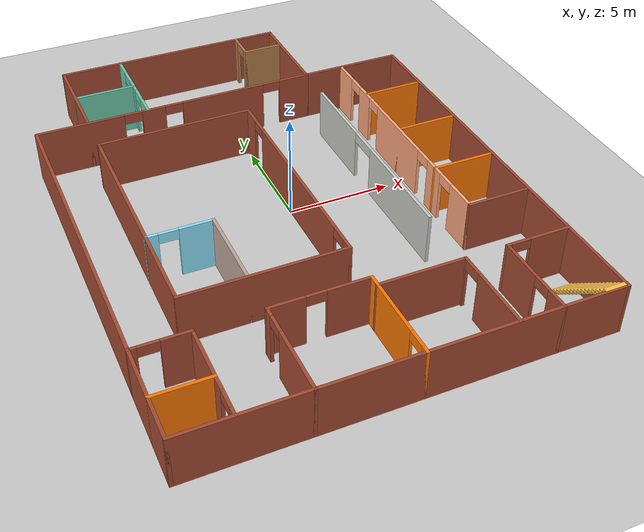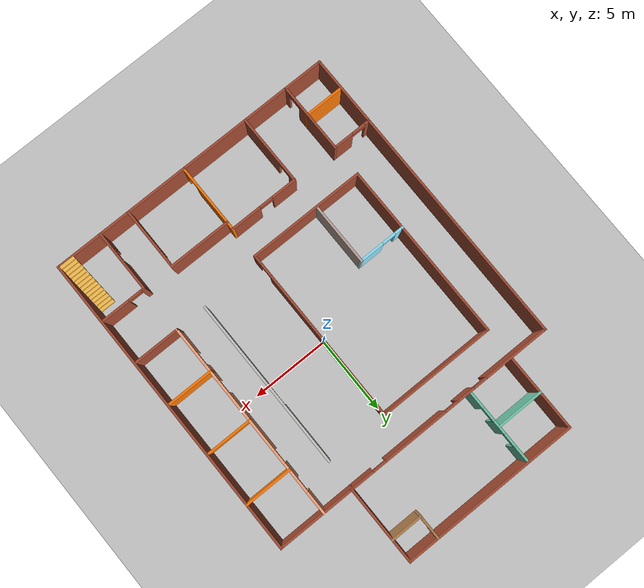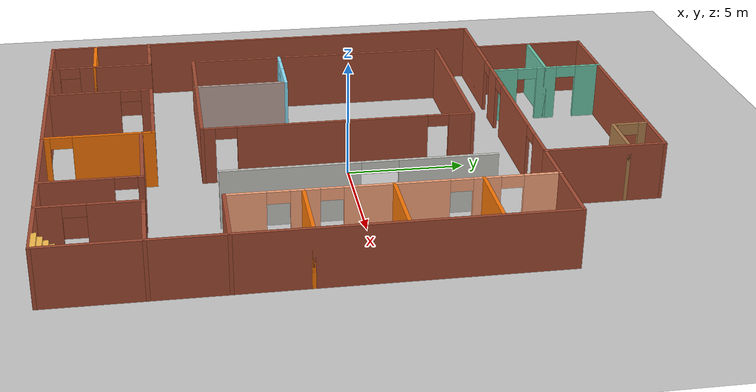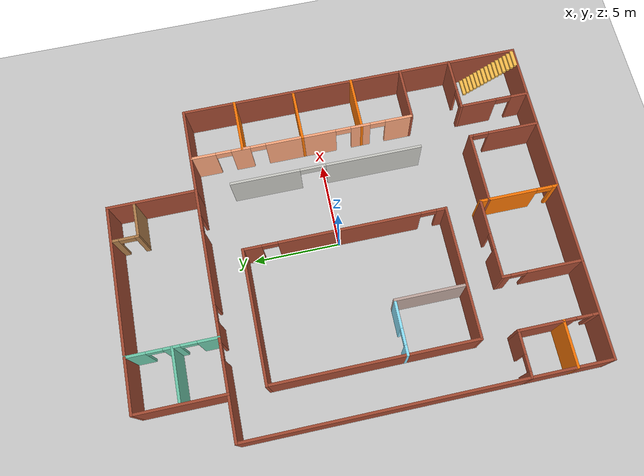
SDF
<sdf version="1.6">
 <world name="default">
  <model name="ground_plane">
   <static>1</static>
   <link name="link">
    <collision name="collision">
     <geometry><plane><normal>0 0 1</normal><size>100 100</size></plane></geometry>
     <surface><friction><ode><mu>100</mu><mu2>50</mu2></ode></friction></surface>
    </collision>
    <visual name="visual">
     <cast_shadows>0</cast_shadows>
     <geometry><plane><normal>0 0 1</normal><size>100 100</size></plane></geometry>
     <material>
      <script><uri>file://media/materials/scripts/gazebo.material</uri><name>Gazebo/Grey</name></script>
     </material>
    </visual>
   </link>
  </model>
  <model name="MyBuilding">
   <pose>-0.452354 -0.124982 0 0 -0 0</pose>
   <link name="Stairs_0">
    <visual name="Stairs_0_Visual_0">
     <pose>8.94729 -9.5729 0.083333 0 -0 0</pose>
     <geometry><box><size>1 0.2 0.166667</size></box></geometry>
     <material>
      <script><uri>file://media/materials/scripts/gazebo.material</uri><name>Gazebo/Grey</name></script>
      <ambient>1 0.764706 0.305882 1</ambient>
     </material>
    </visual>
    <collision name="Stairs_0_Collision_0">
     <geometry><box><size>1 0.2 0.166667</size></box></geometry>
     <pose>8.94729 -9.5729 0.083333 0 -0 0</pose>
    </collision>
    <visual name="Stairs_0_Visual_1">
     <pose>8.94729 -9.7729 0.25 0 -0 0</pose>
     <geometry><box><size>1 0.2 0.166667</size></box></geometry>
     <material>
      <script><uri>file://media/materials/scripts/gazebo.material</uri><name>Gazebo/Grey</name></script>
      <ambient>1 0.764706 0.305882 1</ambient>
     </material>
    </visual>
    <collision name="Stairs_0_Collision_1">
     <geometry><box><size>1 0.2 0.166667</size></box></geometry>
     <pose>8.94729 -9.7729 0.25 0 -0 0</pose>
    </collision>
    <visual name="Stairs_0_Visual_2">
     <pose>8.94729 -9.9729 0.416667 0 -0 0</pose>
     <geometry><box><size>1 0.2 0.166667</size></box></geometry>
     <material>
      <script><uri>file://media/materials/scripts/gazebo.material</uri><name>Gazebo/Grey</name></script>
      <ambient>1 0.764706 0.305882 1</ambient>
     </material>
    </visual>
    <collision name="Stairs_0_Collision_2">
     <geometry><box><size>1 0.2 0.166667</size></box></geometry>
     <pose>8.94729 -9.9729 0.416667 0 -0 0</pose>
    </collision>
    <visual name="Stairs_0_Visual_3">
     <pose>8.94729 -10.1729 0.583333 0 -0 0</pose>
     <geometry><box><size>1 0.2 0.166667</size></box></geometry>
     <material>
      <script><uri>file://media/materials/scripts/gazebo.material</uri><name>Gazebo/Grey</name></script>
      <ambient>1 0.764706 0.305882 1</ambient>
     </material>
    </visual>
    <collision name="Stairs_0_Collision_3">
     <geometry><box><size>1 0.2 0.166667</size></box></geometry>
     <pose>8.94729 -10.1729 0.583333 0 -0 0</pose>
    </collision>
    <visual name="Stairs_0_Visual_4">
     <pose>8.94729 -10.3729 0.75 0 -0 0</pose>
     <geometry><box><size>1 0.2 0.166667</size></box></geometry>
     <material>
      <script><uri>file://media/materials/scripts/gazebo.material</uri><name>Gazebo/Grey</name></script>
      <ambient>1 0.764706 0.305882 1</ambient>
     </material>
    </visual>
    <collision name="Stairs_0_Collision_4">
     <geometry><box><size>1 0.2 0.166667</size></box></geometry>
     <pose>8.94729 -10.3729 0.75 0 -0 0</pose>
    </collision>
    <visual name="Stairs_0_Visual_5">
     <pose>8.94729 -10.5729 0.916667 0 -0 0</pose>
     <geometry><box><size>1 0.2 0.166667</size></box></geometry>
     <material>
      <script><uri>file://media/materials/scripts/gazebo.material</uri><name>Gazebo/Grey</name></script>
      <ambient>1 0.764706 0.305882 1</ambient>
     </material>
    </visual>
    <collision name="Stairs_0_Collision_5">
     <geometry><box><size>1 0.2 0.166667</size></box></geometry>
     <pose>8.94729 -10.5729 0.916667 0 -0 0</pose>
    </collision>
    <visual name="Stairs_0_Visual_6">
     <pose>8.94729 -10.7729 1.08333 0 -0 0</pose>
     <geometry><box><size>1 0.2 0.166667</size></box></geometry>
     <material>
      <script><uri>file://media/materials/scripts/gazebo.material</uri><name>Gazebo/Grey</name></script>
      <ambient>1 0.764706 0.305882 1</ambient>
     </material>
    </visual>
    <collision name="Stairs_0_Collision_6">
     <geometry><box><size>1 0.2 0.166667</size></box></geometry>
     <pose>8.94729 -10.7729 1.08333 0 -0 0</pose>
    </collision>
    <visual name="Stairs_0_Visual_7">
     <pose>8.94729 -10.9729 1.25 0 -0 0</pose>
     <geometry><box><size>1 0.2 0.166667</size></box></geometry>
     <material>
      <script><uri>file://media/materials/scripts/gazebo.material</uri><name>Gazebo/Grey</name></script>
      <ambient>1 0.764706 0.305882 1</ambient>
     </material>
    </visual>
    <collision name="Stairs_0_Collision_7">
     <geometry><box><size>1 0.2 0.166667</size></box></geometry>
     <pose>8.94729 -10.9729 1.25 0 -0 0</pose>
    </collision>
    <visual name="Stairs_0_Visual_8">
     <pose>8.94729 -11.1729 1.41667 0 -0 0</pose>
     <geometry><box><size>1 0.2 0.166667</size></box></geometry>
     <material>
      <script><uri>file://media/materials/scripts/gazebo.material</uri><name>Gazebo/Grey</name></script>
      <ambient>1 0.764706 0.305882 1</ambient>
     </material>
    </visual>
    <collision name="Stairs_0_Collision_8">
     <geometry><box><size>1 0.2 0.166667</size></box></geometry>
     <pose>8.94729 -11.1729 1.41667 0 -0 0</pose>
    </collision>
    <visual name="Stairs_0_Visual_9">
     <pose>8.94729 -11.3729 1.58333 0 -0 0</pose>
     <geometry><box><size>1 0.2 0.166667</size></box></geometry>
     <material>
      <script><uri>file://media/materials/scripts/gazebo.material</uri><name>Gazebo/Grey</name></script>
      <ambient>1 0.764706 0.305882 1</ambient>
     </material>
    </visual>
    <collision name="Stairs_0_Collision_9">
     <geometry><box><size>1 0.2 0.166667</size></box></geometry>
     <pose>8.94729 -11.3729 1.58333 0 -0 0</pose>
    </collision>
    <visual name="Stairs_0_Visual_10">
     <pose>8.94729 -11.5729 1.75 0 -0 0</pose>
     <geometry><box><size>1 0.2 0.166667</size></box></geometry>
     <material>
      <script><uri>file://media/materials/scripts/gazebo.material</uri><name>Gazebo/Grey</name></script>
      <ambient>1 0.764706 0.305882 1</ambient>
     </material>
    </visual>
    <collision name="Stairs_0_Collision_10">
     <geometry><box><size>1 0.2 0.166667</size></box></geometry>
     <pose>8.94729 -11.5729 1.75 0 -0 0</pose>
    </collision>
    <visual name="Stairs_0_Visual_11">
     <pose>8.94729 -11.7729 1.91667 0 -0 0</pose>
     <geometry><box><size>1 0.2 0.166667</size></box></geometry>
     <material>
      <script><uri>file://media/materials/scripts/gazebo.material</uri><name>Gazebo/Grey</name></script>
      <ambient>1 0.764706 0.305882 1</ambient>
     </material>
    </visual>
    <collision name="Stairs_0_Collision_11">
     <geometry><box><size>1 0.2 0.166667</size></box></geometry>
     <pose>8.94729 -11.7729 1.91667 0 -0 0</pose>
    </collision>
    <visual name="Stairs_0_Visual_12">
     <pose>8.94729 -11.9729 2.08333 0 -0 0</pose>
     <geometry><box><size>1 0.2 0.166667</size></box></geometry>
     <material>
      <script><uri>file://media/materials/scripts/gazebo.material</uri><name>Gazebo/Grey</name></script>
      <ambient>1 0.764706 0.305882 1</ambient>
     </material>
    </visual>
    <collision name="Stairs_0_Collision_12">
     <geometry><box><size>1 0.2 0.166667</size></box></geometry>
     <pose>8.94729 -11.9729 2.08333 0 -0 0</pose>
    </collision>
    <visual name="Stairs_0_Visual_13">
     <pose>8.94729 -12.1729 2.25 0 -0 0</pose>
     <geometry><box><size>1 0.2 0.166667</size></box></geometry>
     <material>
      <script><uri>file://media/materials/scripts/gazebo.material</uri><name>Gazebo/Grey</name></script>
      <ambient>1 0.764706 0.305882 1</ambient>
     </material>
    </visual>
    <collision name="Stairs_0_Collision_13">
     <geometry><box><size>1 0.2 0.166667</size></box></geometry>
     <pose>8.94729 -12.1729 2.25 0 -0 0</pose>
    </collision>
    <visual name="Stairs_0_Visual_14">
     <pose>8.94729 -12.3729 2.41667 0 -0 0</pose>
     <geometry><box><size>1 0.2 0.166667</size></box></geometry>
     <material>
      <script><uri>file://media/materials/scripts/gazebo.material</uri><name>Gazebo/Grey</name></script>
      <ambient>1 0.764706 0.305882 1</ambient>
     </material>
    </visual>
    <collision name="Stairs_0_Collision_14">
     <geometry><box><size>1 0.2 0.166667</size></box></geometry>
     <pose>8.94729 -12.3729 2.41667 0 -0 0</pose>
    </collision>
   </link>
   <link name="Wall_11">
    <collision name="Wall_11_Collision">
     <geometry><box><size>7.65008 0.15 2.5</size></box></geometry>
     <pose>0 0 1.25 0 -0 0</pose>
    </collision>
    <visual name="Wall_11_Visual">
     <pose>0 0 1.25 0 -0 0</pose>
     <geometry><box><size>7.65008 0.15 2.5</size></box></geometry>
     <material>
      <script><uri>file://media/materials/scripts/gazebo.material</uri><name>Gazebo/Bricks</name></script>
      <ambient>1 1 1 1</ambient>
     </material>
    </visual>
    <pose>-3.25 5.5 0 0 -0 0</pose>
   </link>
   <link name="Wall_13">
    <pose>0.5 -0.25 0 0 0 -1.5708</pose>
    <visual name="Wall_13_Visual_0">
     <pose>-5.25703 0 1.25 0 -0 0</pose>
     <geometry><box><size>1.13593 0.15 2.5</size></box></geometry>
     <material>
      <script><uri>file://media/materials/scripts/gazebo.material</uri><name>Gazebo/Bricks</name></script>
      <ambient>1 1 1 1</ambient>
     </material>
    </visual>
    <collision name="Wall_13_Collision_0">
     <geometry><box><size>1.13593 0.15 2.5</size></box></geometry>
     <pose>-5.25703 0 1.25 0 -0 0</pose>
    </collision>
    <visual name="Wall_13_Visual_1">
     <pose>0.255466 0 1.25 0 -0 0</pose>
     <geometry><box><size>8.08907 0.15 2.5</size></box></geometry>
     <material>
      <script><uri>file://media/materials/scripts/gazebo.material</uri><name>Gazebo/Bricks</name></script>
      <ambient>1 1 1 1</ambient>
     </material>
    </visual>
    <collision name="Wall_13_Collision_1">
     <geometry><box><size>8.08907 0.15 2.5</size></box></geometry>
     <pose>0.255466 0 1.25 0 -0 0</pose>
    </collision>
    <visual name="Wall_13_Visual_2">
     <pose>5.5125 0 1.25 0 -0 0</pose>
     <geometry><box><size>0.625 0.15 2.5</size></box></geometry>
     <material>
      <script><uri>file://media/materials/scripts/gazebo.material</uri><name>Gazebo/Bricks</name></script>
      <ambient>1 1 1 1</ambient>
     </material>
    </visual>
    <collision name="Wall_13_Collision_2">
     <geometry><box><size>0.625 0.15 2.5</size></box></geometry>
     <pose>5.5125 0 1.25 0 -0 0</pose>
    </collision>
    <visual name="Wall_13_Visual_3">
     <pose>-4.23907 0 2.25 0 -0 0</pose>
     <geometry><box><size>0.9 0.15 0.5</size></box></geometry>
     <material>
      <script><uri>file://media/materials/scripts/gazebo.material</uri><name>Gazebo/Bricks</name></script>
      <ambient>1 1 1 1</ambient>
     </material>
    </visual>
    <collision name="Wall_13_Collision_3">
     <geometry><box><size>0.9 0.15 0.5</size></box></geometry>
     <pose>-4.23907 0 2.25 0 -0 0</pose>
    </collision>
    <visual name="Wall_13_Visual_4">
     <pose>4.75 0 2.25 0 -0 0</pose>
     <geometry><box><size>0.9 0.15 0.5</size></box></geometry>
     <material>
      <script><uri>file://media/materials/scripts/gazebo.material</uri><name>Gazebo/Bricks</name></script>
      <ambient>1 1 1 1</ambient>
     </material>
    </visual>
    <collision name="Wall_13_Collision_4">
     <geometry><box><size>0.9 0.15 0.5</size></box></geometry>
     <pose>4.75 0 2.25 0 -0 0</pose>
    </collision>
   </link>
   <link name="Wall_17">
    <collision name="Wall_17_Collision">
     <geometry><box><size>4.15 0.15 2.5</size></box></geometry>
     <pose>0 0 1.25 0 -0 0</pose>
    </collision>
    <visual name="Wall_17_Visual">
     <pose>0 0 1.25 0 -0 0</pose>
     <geometry><box><size>4.15 0.15 2.5</size></box></geometry>
     <material>
      <script><uri>file://media/materials/scripts/gazebo.material</uri><name>Gazebo/Grey</name></script>
      <ambient>0.760784 0.662745 0.627451 1</ambient>
     </material>
    </visual>
    <pose>-4 -4 0 0 -0 1.5708</pose>
   </link>
   <link name="Wall_2">
    <collision name="Wall_2_Collision">
     <geometry><box><size>20.15 0.15 2.5</size></box></geometry>
     <pose>0 0 1.25 0 -0 0</pose>
    </collision>
    <visual name="Wall_2_Visual">
     <pose>0 0 1.25 0 -0 0</pose>
     <geometry><box><size>20.15 0.15 2.5</size></box></geometry>
     <material>
      <script><uri>file://media/materials/scripts/gazebo.material</uri><name>Gazebo/Bricks</name></script>
      <ambient>1 1 1 1</ambient>
     </material>
    </visual>
    <pose>-9.5 -2.5 0 0 -0 1.5708</pose>
   </link>
   <link name="Wall_20">
    <pose>-5.5 -2 0 0 -0 3.14159</pose>
    <visual name="Wall_20_Visual_0">
     <pose>-0.751088 0 1.25 0 -0 0</pose>
     <geometry><box><size>1.64782 0.15 2.5</size></box></geometry>
     <material>
      <script><uri>file://media/materials/scripts/gazebo.material</uri><name>Gazebo/Grey</name></script>
      <ambient>0.560784 0.905882 1 1</ambient>
     </material>
    </visual>
    <collision name="Wall_20_Collision_0">
     <geometry><box><size>1.64782 0.15 2.5</size></box></geometry>
     <pose>-0.751088 0 1.25 0 -0 0</pose>
    </collision>
    <visual name="Wall_20_Visual_1">
     <pose>1.27391 0 1.25 0 -0 0</pose>
     <geometry><box><size>0.602176 0.15 2.5</size></box></geometry>
     <material>
      <script><uri>file://media/materials/scripts/gazebo.material</uri><name>Gazebo/Grey</name></script>
      <ambient>0.560784 0.905882 1 1</ambient>
     </material>
    </visual>
    <collision name="Wall_20_Collision_1">
     <geometry><box><size>0.602176 0.15 2.5</size></box></geometry>
     <pose>1.27391 0 1.25 0 -0 0</pose>
    </collision>
    <visual name="Wall_20_Visual_2">
     <pose>0.522824 0 2.25 0 -0 0</pose>
     <geometry><box><size>0.9 0.15 0.5</size></box></geometry>
     <material>
      <script><uri>file://media/materials/scripts/gazebo.material</uri><name>Gazebo/Grey</name></script>
      <ambient>0.560784 0.905882 1 1</ambient>
     </material>
    </visual>
    <collision name="Wall_20_Collision_2">
     <geometry><box><size>0.9 0.15 0.5</size></box></geometry>
     <pose>0.522824 0 2.25 0 -0 0</pose>
    </collision>
   </link>
   <link name="Wall_22">
    <pose>-2.5 7.5 0 0 -0 0</pose>
    <visual name="Wall_22_Visual_0">
     <pose>-4.89486 0 1.25 0 -0 0</pose>
     <geometry><box><size>4.36028 0.15 2.5</size></box></geometry>
     <material>
      <script><uri>file://media/materials/scripts/gazebo.material</uri><name>Gazebo/Bricks</name></script>
      <ambient>1 1 1 1</ambient>
     </material>
    </visual>
    <collision name="Wall_22_Collision_0">
     <geometry><box><size>4.36028 0.15 2.5</size></box></geometry>
     <pose>-4.89486 0 1.25 0 -0 0</pose>
    </collision>
    <visual name="Wall_22_Visual_1">
     <pose>-1.22142 0 1.25 0 -0 0</pose>
     <geometry><box><size>1.1866 0.15 2.5</size></box></geometry>
     <material>
      <script><uri>file://media/materials/scripts/gazebo.material</uri><name>Gazebo/Bricks</name></script>
      <ambient>1 1 1 1</ambient>
     </material>
    </visual>
    <collision name="Wall_22_Collision_1">
     <geometry><box><size>1.1866 0.15 2.5</size></box></geometry>
     <pose>-1.22142 0 1.25 0 -0 0</pose>
    </collision>
    <visual name="Wall_22_Visual_2">
     <pose>2.4158 0 1.25 0 -0 0</pose>
     <geometry><box><size>4.28784 0.15 2.5</size></box></geometry>
     <material>
      <script><uri>file://media/materials/scripts/gazebo.material</uri><name>Gazebo/Bricks</name></script>
      <ambient>1 1 1 1</ambient>
     </material>
    </visual>
    <collision name="Wall_22_Collision_2">
     <geometry><box><size>4.28784 0.15 2.5</size></box></geometry>
     <pose>2.4158 0 1.25 0 -0 0</pose>
    </collision>
    <visual name="Wall_22_Visual_3">
     <pose>6.26736 0 1.25 0 -0 0</pose>
     <geometry><box><size>1.61528 0.15 2.5</size></box></geometry>
     <material>
      <script><uri>file://media/materials/scripts/gazebo.material</uri><name>Gazebo/Bricks</name></script>
      <ambient>1 1 1 1</ambient>
     </material>
    </visual>
    <collision name="Wall_22_Collision_3">
     <geometry><box><size>1.61528 0.15 2.5</size></box></geometry>
     <pose>6.26736 0 1.25 0 -0 0</pose>
    </collision>
    <visual name="Wall_22_Visual_4">
     <pose>-2.26472 0 2.25 0 -0 0</pose>
     <geometry><box><size>0.9 0.15 0.5</size></box></geometry>
     <material>
      <script><uri>file://media/materials/scripts/gazebo.material</uri><name>Gazebo/Bricks</name></script>
      <ambient>1 1 1 1</ambient>
     </material>
    </visual>
    <collision name="Wall_22_Collision_4">
     <geometry><box><size>0.9 0.15 0.5</size></box></geometry>
     <pose>-2.26472 0 2.25 0 -0 0</pose>
    </collision>
    <visual name="Wall_22_Visual_5">
     <pose>-0.17812 0 2.25 0 -0 0</pose>
     <geometry><box><size>0.9 0.15 0.5</size></box></geometry>
     <material>
      <script><uri>file://media/materials/scripts/gazebo.material</uri><name>Gazebo/Bricks</name></script>
      <ambient>1 1 1 1</ambient>
     </material>
    </visual>
    <collision name="Wall_22_Collision_5">
     <geometry><box><size>0.9 0.15 0.5</size></box></geometry>
     <pose>-0.17812 0 2.25 0 -0 0</pose>
    </collision>
    <visual name="Wall_22_Visual_6">
     <pose>5.00972 0 2.25 0 -0 0</pose>
     <geometry><box><size>0.9 0.15 0.5</size></box></geometry>
     <material>
      <script><uri>file://media/materials/scripts/gazebo.material</uri><name>Gazebo/Bricks</name></script>
      <ambient>1 1 1 1</ambient>
     </material>
    </visual>
    <collision name="Wall_22_Collision_6">
     <geometry><box><size>0.9 0.15 0.5</size></box></geometry>
     <pose>5.00972 0 2.25 0 -0 0</pose>
    </collision>
   </link>
   <link name="Wall_23">
    <collision name="Wall_23_Collision">
     <geometry><box><size>5.15 0.15 2.5</size></box></geometry>
     <pose>0 0 1.25 0 -0 0</pose>
    </collision>
    <visual name="Wall_23_Visual">
     <pose>0 0 1.25 0 -0 0</pose>
     <geometry><box><size>5.15 0.15 2.5</size></box></geometry>
     <material>
      <script><uri>file://media/materials/scripts/gazebo.material</uri><name>Gazebo/Bricks</name></script>
      <ambient>1 1 1 1</ambient>
     </material>
    </visual>
    <pose>4.5 10 0 0 -0 1.5708</pose>
   </link>
   <link name="Wall_24">
    <collision name="Wall_24_Collision">
     <geometry><box><size>11.65 0.15 2.5</size></box></geometry>
     <pose>0 0 1.25 0 -0 0</pose>
    </collision>
    <visual name="Wall_24_Visual">
     <pose>0 0 1.25 0 -0 0</pose>
     <geometry><box><size>11.65 0.15 2.5</size></box></geometry>
     <material>
      <script><uri>file://media/materials/scripts/gazebo.material</uri><name>Gazebo/Bricks</name></script>
      <ambient>1 1 1 1</ambient>
     </material>
    </visual>
    <pose>-1.25 12.5 0 0 -0 3.14159</pose>
   </link>
   <link name="Wall_25">
    <collision name="Wall_25_Collision">
     <geometry><box><size>5.15 0.15 2.5</size></box></geometry>
     <pose>0 0 1.25 0 -0 0</pose>
    </collision>
    <visual name="Wall_25_Visual">
     <pose>0 0 1.25 0 -0 0</pose>
     <geometry><box><size>5.15 0.15 2.5</size></box></geometry>
     <material>
      <script><uri>file://media/materials/scripts/gazebo.material</uri><name>Gazebo/Bricks</name></script>
      <ambient>1 1 1 1</ambient>
     </material>
    </visual>
    <pose>-7 10 0 0 0 -1.5708</pose>
   </link>
   <link name="Wall_27">
    <pose>4.5 0 0 0 -0 1.5708</pose>
    <visual name="Wall_27_Visual_0">
     <pose>-2.77301 0 1.25 0 -0 0</pose>
     <geometry><box><size>5.60398 0.15 2.5</size></box></geometry>
     <material>
      <script><uri>file://media/materials/scripts/gazebo.material</uri><name>Gazebo/CeilingTiled</name></script>
      <ambient>0.560784 0.905882 1 1</ambient>
     </material>
    </visual>
    <collision name="Wall_27_Collision_0">
     <geometry><box><size>5.60398 0.15 2.5</size></box></geometry>
     <pose>-2.77301 0 1.25 0 -0 0</pose>
    </collision>
    <visual name="Wall_27_Visual_1">
     <pose>3.55199 0 1.25 0 -0 0</pose>
     <geometry><box><size>4.04602 0.15 2.5</size></box></geometry>
     <material>
      <script><uri>file://media/materials/scripts/gazebo.material</uri><name>Gazebo/CeilingTiled</name></script>
      <ambient>0.560784 0.905882 1 1</ambient>
     </material>
    </visual>
    <collision name="Wall_27_Collision_1">
     <geometry><box><size>4.04602 0.15 2.5</size></box></geometry>
     <pose>3.55199 0 1.25 0 -0 0</pose>
    </collision>
    <visual name="Wall_27_Visual_2">
     <pose>0.778981 0 2.25 0 -0 0</pose>
     <geometry><box><size>1.5 0.15 0.5</size></box></geometry>
     <material>
      <script><uri>file://media/materials/scripts/gazebo.material</uri><name>Gazebo/CeilingTiled</name></script>
      <ambient>0.560784 0.905882 1 1</ambient>
     </material>
    </visual>
    <collision name="Wall_27_Collision_2">
     <geometry><box><size>1.5 0.15 0.5</size></box></geometry>
     <pose>0.778981 0 2.25 0 -0 0</pose>
    </collision>
   </link>
   <link name="Wall_30">
    <pose>0.5 -10.25 0 0 0 -1.5708</pose>
    <visual name="Wall_30_Visual_0">
     <pose>-0.641869 0 1.25 0 -0 0</pose>
     <geometry><box><size>3.36626 0.15 2.5</size></box></geometry>
     <material>
      <script><uri>file://media/materials/scripts/gazebo.material</uri><name>Gazebo/Grey</name></script>
      <ambient>0.996078 0.47451 0.0196078 1</ambient>
     </material>
    </visual>
    <collision name="Wall_30_Collision_0">
     <geometry><box><size>3.36626 0.15 2.5</size></box></geometry>
     <pose>-0.641869 0 1.25 0 -0 0</pose>
    </collision>
    <visual name="Wall_30_Visual_1">
     <pose>2.13313 0 1.25 0 -0 0</pose>
     <geometry><box><size>0.383739 0.15 2.5</size></box></geometry>
     <material>
      <script><uri>file://media/materials/scripts/gazebo.material</uri><name>Gazebo/Grey</name></script>
      <ambient>0.996078 0.47451 0.0196078 1</ambient>
     </material>
    </visual>
    <collision name="Wall_30_Collision_1">
     <geometry><box><size>0.383739 0.15 2.5</size></box></geometry>
     <pose>2.13313 0 1.25 0 -0 0</pose>
    </collision>
    <visual name="Wall_30_Visual_2">
     <pose>1.49126 0 2.25 0 -0 0</pose>
     <geometry><box><size>0.9 0.15 0.5</size></box></geometry>
     <material>
      <script><uri>file://media/materials/scripts/gazebo.material</uri><name>Gazebo/Grey</name></script>
      <ambient>0.996078 0.47451 0.0196078 1</ambient>
     </material>
    </visual>
    <collision name="Wall_30_Collision_2">
     <geometry><box><size>0.9 0.15 0.5</size></box></geometry>
     <pose>1.49126 0 2.25 0 -0 0</pose>
    </collision>
   </link>
   <link name="Wall_32">
    <pose>6.5 1 0 0 -0 1.5708</pose>
    <visual name="Wall_32_Visual_0">
     <pose>-5.73988 0 1.25 0 -0 0</pose>
     <geometry><box><size>1.67024 0.15 2.5</size></box></geometry>
     <material>
      <script><uri>file://media/materials/scripts/gazebo.material</uri><name>Gazebo/Grey</name></script>
      <ambient>1 0.666667 0.498039 1</ambient>
     </material>
    </visual>
    <collision name="Wall_32_Collision_0">
     <geometry><box><size>1.67024 0.15 2.5</size></box></geometry>
     <pose>-5.73988 0 1.25 0 -0 0</pose>
    </collision>
    <visual name="Wall_32_Visual_1">
     <pose>-3.43123 0 1.25 0 -0 0</pose>
     <geometry><box><size>1.14705 0.15 2.5</size></box></geometry>
     <material>
      <script><uri>file://media/materials/scripts/gazebo.material</uri><name>Gazebo/Grey</name></script>
      <ambient>1 0.666667 0.498039 1</ambient>
     </material>
    </visual>
    <collision name="Wall_32_Collision_1">
     <geometry><box><size>1.14705 0.15 2.5</size></box></geometry>
     <pose>-3.43123 0 1.25 0 -0 0</pose>
    </collision>
    <visual name="Wall_32_Visual_2">
     <pose>0.104585 0 1.25 0 -0 0</pose>
     <geometry><box><size>4.12458 0.15 2.5</size></box></geometry>
     <material>
      <script><uri>file://media/materials/scripts/gazebo.material</uri><name>Gazebo/Grey</name></script>
      <ambient>1 0.666667 0.498039 1</ambient>
     </material>
    </visual>
    <collision name="Wall_32_Collision_2">
     <geometry><box><size>4.12458 0.15 2.5</size></box></geometry>
     <pose>0.104585 0 1.25 0 -0 0</pose>
    </collision>
    <visual name="Wall_32_Visual_3">
     <pose>3.61714 0 1.25 0 -0 0</pose>
     <geometry><box><size>1.10053 0.15 2.5</size></box></geometry>
     <material>
      <script><uri>file://media/materials/scripts/gazebo.material</uri><name>Gazebo/Grey</name></script>
      <ambient>1 0.666667 0.498039 1</ambient>
     </material>
    </visual>
    <collision name="Wall_32_Collision_3">
     <geometry><box><size>1.10053 0.15 2.5</size></box></geometry>
     <pose>3.61714 0 1.25 0 -0 0</pose>
    </collision>
    <visual name="Wall_32_Visual_4">
     <pose>5.8212 0 1.25 0 -0 0</pose>
     <geometry><box><size>1.5076 0.15 2.5</size></box></geometry>
     <material>
      <script><uri>file://media/materials/scripts/gazebo.material</uri><name>Gazebo/Grey</name></script>
      <ambient>1 0.666667 0.498039 1</ambient>
     </material>
    </visual>
    <collision name="Wall_32_Collision_4">
     <geometry><box><size>1.5076 0.15 2.5</size></box></geometry>
     <pose>5.8212 0 1.25 0 -0 0</pose>
    </collision>
    <visual name="Wall_32_Visual_5">
     <pose>-4.45476 0 2.25 0 -0 0</pose>
     <geometry><box><size>0.9 0.15 0.5</size></box></geometry>
     <material>
      <script><uri>file://media/materials/scripts/gazebo.material</uri><name>Gazebo/Grey</name></script>
      <ambient>1 0.666667 0.498039 1</ambient>
     </material>
    </visual>
    <collision name="Wall_32_Collision_5">
     <geometry><box><size>0.9 0.15 0.5</size></box></geometry>
     <pose>-4.45476 0 2.25 0 -0 0</pose>
    </collision>
    <visual name="Wall_32_Visual_6">
     <pose>-2.40771 0 2.25 0 -0 0</pose>
     <geometry><box><size>0.9 0.15 0.5</size></box></geometry>
     <material>
      <script><uri>file://media/materials/scripts/gazebo.material</uri><name>Gazebo/Grey</name></script>
      <ambient>1 0.666667 0.498039 1</ambient>
     </material>
    </visual>
    <collision name="Wall_32_Collision_6">
     <geometry><box><size>0.9 0.15 0.5</size></box></geometry>
     <pose>-2.40771 0 2.25 0 -0 0</pose>
    </collision>
    <visual name="Wall_32_Visual_7">
     <pose>2.61688 0 2.25 0 -0 0</pose>
     <geometry><box><size>0.9 0.15 0.5</size></box></geometry>
     <material>
      <script><uri>file://media/materials/scripts/gazebo.material</uri><name>Gazebo/Grey</name></script>
      <ambient>1 0.666667 0.498039 1</ambient>
     </material>
    </visual>
    <collision name="Wall_32_Collision_7">
     <geometry><box><size>0.9 0.15 0.5</size></box></geometry>
     <pose>2.61688 0 2.25 0 -0 0</pose>
    </collision>
    <visual name="Wall_32_Visual_8">
     <pose>4.6174 0 2.25 0 -0 0</pose>
     <geometry><box><size>0.9 0.15 0.5</size></box></geometry>
     <material>
      <script><uri>file://media/materials/scripts/gazebo.material</uri><name>Gazebo/Grey</name></script>
      <ambient>1 0.666667 0.498039 1</ambient>
     </material>
    </visual>
    <collision name="Wall_32_Collision_8">
     <geometry><box><size>0.9 0.15 0.5</size></box></geometry>
     <pose>4.6174 0 2.25 0 -0 0</pose>
    </collision>
   </link>
   <link name="Wall_34">
    <collision name="Wall_34_Collision">
     <geometry><box><size>20.15 0.15 2.5</size></box></geometry>
     <pose>0 0 1.25 0 -0 0</pose>
    </collision>
    <visual name="Wall_34_Visual">
     <pose>0 0 1.25 0 -0 0</pose>
     <geometry><box><size>20.15 0.15 2.5</size></box></geometry>
     <material>
      <script><uri>file://media/materials/scripts/gazebo.material</uri><name>Gazebo/Bricks</name></script>
      <ambient>1 1 1 1</ambient>
     </material>
    </visual>
    <pose>9.5 -2.5 0 0 0 -1.5708</pose>
   </link>
   <link name="Wall_36">
    <collision name="Wall_36_Collision">
     <geometry><box><size>5.15 0.15 2.5</size></box></geometry>
     <pose>0 0 1.25 0 -0 0</pose>
    </collision>
    <visual name="Wall_36_Visual">
     <pose>0 0 1.25 0 -0 0</pose>
     <geometry><box><size>5.15 0.15 2.5</size></box></geometry>
     <material>
      <script><uri>file://media/materials/scripts/gazebo.material</uri><name>Gazebo/Bricks</name></script>
      <ambient>1 1 1 1</ambient>
     </material>
    </visual>
    <pose>7 7.5 0 0 -0 0</pose>
   </link>
   <link name="Wall_38">
    <collision name="Wall_38_Collision">
     <geometry><box><size>3.15 0.15 2.5</size></box></geometry>
     <pose>0 0 1.25 0 -0 0</pose>
    </collision>
    <visual name="Wall_38_Visual">
     <pose>0 0 1.25 0 -0 0</pose>
     <geometry><box><size>3.15 0.15 2.5</size></box></geometry>
     <material>
      <script><uri>file://media/materials/scripts/gazebo.material</uri><name>Gazebo/Bricks</name></script>
      <ambient>1 1 1 1</ambient>
     </material>
    </visual>
    <pose>8 -5.5 0 0 -0 0</pose>
   </link>
   <link name="Wall_4">
    <collision name="Wall_4_Collision">
     <geometry><box><size>19.15 0.15 2.5</size></box></geometry>
     <pose>0 0 1.25 0 -0 0</pose>
    </collision>
    <visual name="Wall_4_Visual">
     <pose>0 0 1.25 0 -0 0</pose>
     <geometry><box><size>19.15 0.15 2.5</size></box></geometry>
     <material>
      <script><uri>file://media/materials/scripts/gazebo.material</uri><name>Gazebo/Bricks</name></script>
      <ambient>1 1 1 1</ambient>
     </material>
    </visual>
    <pose>0 -12.5 0 0 -0 0</pose>
   </link>
   <link name="Wall_40">
    <pose>8 -8.5 0 0 -0 3.14159</pose>
    <visual name="Wall_40_Visual_0">
     <pose>-0.584222 0 1.25 0 -0 0</pose>
     <geometry><box><size>1.98156 0.15 2.5</size></box></geometry>
     <material>
      <script><uri>file://media/materials/scripts/gazebo.material</uri><name>Gazebo/Bricks</name></script>
      <ambient>1 1 1 1</ambient>
     </material>
    </visual>
    <collision name="Wall_40_Collision_0">
     <geometry><box><size>1.98156 0.15 2.5</size></box></geometry>
     <pose>-0.584222 0 1.25 0 -0 0</pose>
    </collision>
    <visual name="Wall_40_Visual_1">
     <pose>1.44078 0 1.25 0 -0 0</pose>
     <geometry><box><size>0.268443 0.15 2.5</size></box></geometry>
     <material>
      <script><uri>file://media/materials/scripts/gazebo.material</uri><name>Gazebo/Bricks</name></script>
      <ambient>1 1 1 1</ambient>
     </material>
    </visual>
    <collision name="Wall_40_Collision_1">
     <geometry><box><size>0.268443 0.15 2.5</size></box></geometry>
     <pose>1.44078 0 1.25 0 -0 0</pose>
    </collision>
    <visual name="Wall_40_Visual_2">
     <pose>0.856557 0 2.25 0 -0 0</pose>
     <geometry><box><size>0.9 0.15 0.5</size></box></geometry>
     <material>
      <script><uri>file://media/materials/scripts/gazebo.material</uri><name>Gazebo/Bricks</name></script>
      <ambient>1 1 1 1</ambient>
     </material>
    </visual>
    <collision name="Wall_40_Collision_2">
     <geometry><box><size>0.9 0.15 0.5</size></box></geometry>
     <pose>0.856557 0 2.25 0 -0 0</pose>
    </collision>
   </link>
   <link name="Wall_41">
    <pose>6.5 -10.5 0 0 0 -1.5708</pose>
    <visual name="Wall_41_Visual_0">
     <pose>-0.993422 0 1.25 0 -0 0</pose>
     <geometry><box><size>2.16316 0.15 2.5</size></box></geometry>
     <material>
      <script><uri>file://media/materials/scripts/gazebo.material</uri><name>Gazebo/Bricks</name></script>
      <ambient>1 1 1 1</ambient>
     </material>
    </visual>
    <collision name="Wall_41_Collision_0">
     <geometry><box><size>2.16316 0.15 2.5</size></box></geometry>
     <pose>-0.993422 0 1.25 0 -0 0</pose>
    </collision>
    <visual name="Wall_41_Visual_1">
     <pose>1.53158 0 1.25 0 -0 0</pose>
     <geometry><box><size>1.08684 0.15 2.5</size></box></geometry>
     <material>
      <script><uri>file://media/materials/scripts/gazebo.material</uri><name>Gazebo/Bricks</name></script>
      <ambient>1 1 1 1</ambient>
     </material>
    </visual>
    <collision name="Wall_41_Collision_1">
     <geometry><box><size>1.08684 0.15 2.5</size></box></geometry>
     <pose>1.53158 0 1.25 0 -0 0</pose>
    </collision>
    <visual name="Wall_41_Visual_2">
     <pose>0.538157 0 2.25 0 -0 0</pose>
     <geometry><box><size>0.9 0.15 0.5</size></box></geometry>
     <material>
      <script><uri>file://media/materials/scripts/gazebo.material</uri><name>Gazebo/Bricks</name></script>
      <ambient>1 1 1 1</ambient>
     </material>
    </visual>
    <collision name="Wall_41_Collision_2">
     <geometry><box><size>0.9 0.15 0.5</size></box></geometry>
     <pose>0.538157 0 2.25 0 -0 0</pose>
    </collision>
   </link>
   <link name="Wall_43">
    <collision name="Wall_43_Collision">
     <geometry><box><size>4.15 0.15 2.5</size></box></geometry>
     <pose>0 0 1.25 0 -0 0</pose>
    </collision>
    <visual name="Wall_43_Visual">
     <pose>0 0 1.25 0 -0 0</pose>
     <geometry><box><size>4.15 0.15 2.5</size></box></geometry>
     <material>
      <script><uri>file://media/materials/scripts/gazebo.material</uri><name>Gazebo/Bricks</name></script>
      <ambient>1 1 1 1</ambient>
     </material>
    </visual>
    <pose>2.5 -8.5 0 0 -0 0</pose>
   </link>
   <link name="Wall_44">
    <pose>4.5 -10.5 0 0 0 -1.5708</pose>
    <visual name="Wall_44_Visual_0">
     <pose>-1.9526 0 1.25 0 -0 0</pose>
     <geometry><box><size>0.244488 0.15 2.5</size></box></geometry>
     <material>
      <script><uri>file://media/materials/scripts/gazebo.material</uri><name>Gazebo/Bricks</name></script>
      <ambient>1 1 1 1</ambient>
     </material>
    </visual>
    <collision name="Wall_44_Collision_0">
     <geometry><box><size>0.244488 0.15 2.5</size></box></geometry>
     <pose>-1.9526 0 1.25 0 -0 0</pose>
    </collision>
    <visual name="Wall_44_Visual_1">
     <pose>0.572244 0 1.25 0 -0 0</pose>
     <geometry><box><size>3.00521 0.15 2.5</size></box></geometry>
     <material>
      <script><uri>file://media/materials/scripts/gazebo.material</uri><name>Gazebo/Bricks</name></script>
      <ambient>1 1 1 1</ambient>
     </material>
    </visual>
    <collision name="Wall_44_Collision_1">
     <geometry><box><size>3.00521 0.15 2.5</size></box></geometry>
     <pose>0.572244 0 1.25 0 -0 0</pose>
    </collision>
    <visual name="Wall_44_Visual_2">
     <pose>-1.38036 0 2.25 0 -0 0</pose>
     <geometry><box><size>0.9 0.15 0.5</size></box></geometry>
     <material>
      <script><uri>file://media/materials/scripts/gazebo.material</uri><name>Gazebo/Bricks</name></script>
      <ambient>1 1 1 1</ambient>
     </material>
    </visual>
    <collision name="Wall_44_Collision_2">
     <geometry><box><size>0.9 0.15 0.5</size></box></geometry>
     <pose>-1.38036 0 2.25 0 -0 0</pose>
    </collision>
   </link>
   <link name="Wall_46">
    <collision name="Wall_46_Collision">
     <geometry><box><size>3.15 0.15 2.5</size></box></geometry>
     <pose>0 0 1.25 0 -0 0</pose>
    </collision>
    <visual name="Wall_46_Visual">
     <pose>0 0 1.25 0 -0 0</pose>
     <geometry><box><size>3.15 0.15 2.5</size></box></geometry>
     <material>
      <script><uri>file://media/materials/scripts/gazebo.material</uri><name>Gazebo/Grey</name></script>
      <ambient>0.996078 0.47451 0.0196078 1</ambient>
     </material>
    </visual>
    <pose>8 -2.5 0 0 -0 0</pose>
   </link>
   <link name="Wall_48">
    <collision name="Wall_48_Collision">
     <geometry><box><size>3.15 0.15 2.5</size></box></geometry>
     <pose>0 0 1.25 0 -0 0</pose>
    </collision>
    <visual name="Wall_48_Visual">
     <pose>0 0 1.25 0 -0 0</pose>
     <geometry><box><size>3.15 0.15 2.5</size></box></geometry>
     <material>
      <script><uri>file://media/materials/scripts/gazebo.material</uri><name>Gazebo/Grey</name></script>
      <ambient>0.996078 0.47451 0.0196078 1</ambient>
     </material>
    </visual>
    <pose>8 1 0 0 -0 0</pose>
   </link>
   <link name="Wall_50">
    <collision name="Wall_50_Collision">
     <geometry><box><size>3.15 0.15 2.5</size></box></geometry>
     <pose>0 0 1.25 0 -0 0</pose>
    </collision>
    <visual name="Wall_50_Visual">
     <pose>0 0 1.25 0 -0 0</pose>
     <geometry><box><size>3.15 0.15 2.5</size></box></geometry>
     <material>
      <script><uri>file://media/materials/scripts/gazebo.material</uri><name>Gazebo/Grey</name></script>
      <ambient>0.996078 0.47451 0.0196078 1</ambient>
     </material>
    </visual>
    <pose>8 4.5 0 0 -0 0</pose>
   </link>
   <link name="Wall_52">
    <pose>-8.25 -8 0 0 -0 0</pose>
    <visual name="Wall_52_Visual_0">
     <pose>-1.12311 0 1.25 0 -0 0</pose>
     <geometry><box><size>0.403789 0.15 2.5</size></box></geometry>
     <material>
      <script><uri>file://media/materials/scripts/gazebo.material</uri><name>Gazebo/Bricks</name></script>
      <ambient>1 1 1 1</ambient>
     </material>
    </visual>
    <collision name="Wall_52_Collision_0">
     <geometry><box><size>0.403789 0.15 2.5</size></box></geometry>
     <pose>-1.12311 0 1.25 0 -0 0</pose>
    </collision>
    <visual name="Wall_52_Visual_1">
     <pose>0.651894 0 1.25 0 -0 0</pose>
     <geometry><box><size>1.34621 0.15 2.5</size></box></geometry>
     <material>
      <script><uri>file://media/materials/scripts/gazebo.material</uri><name>Gazebo/Bricks</name></script>
      <ambient>1 1 1 1</ambient>
     </material>
    </visual>
    <collision name="Wall_52_Collision_1">
     <geometry><box><size>1.34621 0.15 2.5</size></box></geometry>
     <pose>0.651894 0 1.25 0 -0 0</pose>
    </collision>
    <visual name="Wall_52_Visual_2">
     <pose>-0.471211 0 2.25 0 -0 0</pose>
     <geometry><box><size>0.9 0.15 0.5</size></box></geometry>
     <material>
      <script><uri>file://media/materials/scripts/gazebo.material</uri><name>Gazebo/Bricks</name></script>
      <ambient>1 1 1 1</ambient>
     </material>
    </visual>
    <collision name="Wall_52_Collision_2">
     <geometry><box><size>0.9 0.15 0.5</size></box></geometry>
     <pose>-0.471211 0 2.25 0 -0 0</pose>
    </collision>
   </link>
   <link name="Wall_53">
    <pose>-7 -10.25 0 0 0 -1.5708</pose>
    <visual name="Wall_53_Visual_0">
     <pose>-0.691016 0 1.25 0 -0 0</pose>
     <geometry><box><size>3.26797 0.15 2.5</size></box></geometry>
     <material>
      <script><uri>file://media/materials/scripts/gazebo.material</uri><name>Gazebo/Bricks</name></script>
      <ambient>1 1 1 1</ambient>
     </material>
    </visual>
    <collision name="Wall_53_Collision_0">
     <geometry><box><size>3.26797 0.15 2.5</size></box></geometry>
     <pose>-0.691016 0 1.25 0 -0 0</pose>
    </collision>
    <visual name="Wall_53_Visual_1">
     <pose>2.08398 0 1.25 0 -0 0</pose>
     <geometry><box><size>0.482033 0.15 2.5</size></box></geometry>
     <material>
      <script><uri>file://media/materials/scripts/gazebo.material</uri><name>Gazebo/Bricks</name></script>
      <ambient>1 1 1 1</ambient>
     </material>
    </visual>
    <collision name="Wall_53_Collision_1">
     <geometry><box><size>0.482033 0.15 2.5</size></box></geometry>
     <pose>2.08398 0 1.25 0 -0 0</pose>
    </collision>
    <visual name="Wall_53_Visual_2">
     <pose>1.39297 0 2.25 0 -0 0</pose>
     <geometry><box><size>0.9 0.15 0.5</size></box></geometry>
     <material>
      <script><uri>file://media/materials/scripts/gazebo.material</uri><name>Gazebo/Bricks</name></script>
      <ambient>1 1 1 1</ambient>
     </material>
    </visual>
    <collision name="Wall_53_Collision_2">
     <geometry><box><size>0.9 0.15 0.5</size></box></geometry>
     <pose>1.39297 0 2.25 0 -0 0</pose>
    </collision>
   </link>
   <link name="Wall_55">
    <pose>-1.75 -8 0 0 -0 3.14159</pose>
    <visual name="Wall_55_Visual_0">
     <pose>-1.29796 0 1.25 0 -0 0</pose>
     <geometry><box><size>2.05409 0.15 2.5</size></box></geometry>
     <material>
      <script><uri>file://media/materials/scripts/gazebo.material</uri><name>Gazebo/Bricks</name></script>
      <ambient>1 1 1 1</ambient>
     </material>
    </visual>
    <collision name="Wall_55_Collision_0">
     <geometry><box><size>2.05409 0.15 2.5</size></box></geometry>
     <pose>-1.29796 0 1.25 0 -0 0</pose>
    </collision>
    <visual name="Wall_55_Visual_1">
     <pose>1.47704 0 1.25 0 -0 0</pose>
     <geometry><box><size>1.69592 0.15 2.5</size></box></geometry>
     <material>
      <script><uri>file://media/materials/scripts/gazebo.material</uri><name>Gazebo/Bricks</name></script>
      <ambient>1 1 1 1</ambient>
     </material>
    </visual>
    <collision name="Wall_55_Collision_1">
     <geometry><box><size>1.69592 0.15 2.5</size></box></geometry>
     <pose>1.47704 0 1.25 0 -0 0</pose>
    </collision>
    <visual name="Wall_55_Visual_2">
     <pose>0.179085 0 2.25 0 -0 0</pose>
     <geometry><box><size>0.9 0.15 0.5</size></box></geometry>
     <material>
      <script><uri>file://media/materials/scripts/gazebo.material</uri><name>Gazebo/Bricks</name></script>
      <ambient>1 1 1 1</ambient>
     </material>
    </visual>
    <collision name="Wall_55_Collision_2">
     <geometry><box><size>0.9 0.15 0.5</size></box></geometry>
     <pose>0.179085 0 2.25 0 -0 0</pose>
    </collision>
   </link>
   <link name="Wall_56">
    <pose>-4 -10.25 0 0 0 -1.5708</pose>
    <visual name="Wall_56_Visual_0">
     <pose>-2.05968 0 1.25 0 -0 0</pose>
     <geometry><box><size>0.530629 0.15 2.5</size></box></geometry>
     <material>
      <script><uri>file://media/materials/scripts/gazebo.material</uri><name>Gazebo/Bricks</name></script>
      <ambient>1 1 1 1</ambient>
     </material>
    </visual>
    <collision name="Wall_56_Collision_0">
     <geometry><box><size>0.530629 0.15 2.5</size></box></geometry>
     <pose>-2.05968 0 1.25 0 -0 0</pose>
    </collision>
    <visual name="Wall_56_Visual_1">
     <pose>0.715315 0 1.25 0 -0 0</pose>
     <geometry><box><size>3.21937 0.15 2.5</size></box></geometry>
     <material>
      <script><uri>file://media/materials/scripts/gazebo.material</uri><name>Gazebo/Bricks</name></script>
      <ambient>1 1 1 1</ambient>
     </material>
    </visual>
    <collision name="Wall_56_Collision_1">
     <geometry><box><size>3.21937 0.15 2.5</size></box></geometry>
     <pose>0.715315 0 1.25 0 -0 0</pose>
    </collision>
    <visual name="Wall_56_Visual_2">
     <pose>-1.34437 0 2.25 0 -0 0</pose>
     <geometry><box><size>0.9 0.15 0.5</size></box></geometry>
     <material>
      <script><uri>file://media/materials/scripts/gazebo.material</uri><name>Gazebo/Bricks</name></script>
      <ambient>1 1 1 1</ambient>
     </material>
    </visual>
    <collision name="Wall_56_Collision_2">
     <geometry><box><size>0.9 0.15 0.5</size></box></geometry>
     <pose>-1.34437 0 2.25 0 -0 0</pose>
    </collision>
   </link>
   <link name="Wall_58">
    <collision name="Wall_58_Collision">
     <geometry><box><size>2.65 0.15 2.5</size></box></geometry>
     <pose>0 0 1.25 0 -0 0</pose>
    </collision>
    <visual name="Wall_58_Visual">
     <pose>0 0 1.25 0 -0 0</pose>
     <geometry><box><size>2.65 0.15 2.5</size></box></geometry>
     <material>
      <script><uri>file://media/materials/scripts/gazebo.material</uri><name>Gazebo/Grey</name></script>
      <ambient>0.996078 0.47451 0.0196078 1</ambient>
     </material>
    </visual>
    <pose>-8.25 -10.5 0 0 -0 0</pose>
   </link>
   <link name="Wall_60">
    <pose>-4 10 0 0 -0 1.5708</pose>
    <visual name="Wall_60_Visual_0">
     <pose>-1.95014 0 1.25 0 -0 0</pose>
     <geometry><box><size>1.24971 0.15 2.5</size></box></geometry>
     <material>
      <script><uri>file://media/materials/scripts/gazebo.material</uri><name>Gazebo/Grey</name></script>
      <ambient>0.435294 0.796078 0.67451 1</ambient>
     </material>
    </visual>
    <collision name="Wall_60_Collision_0">
     <geometry><box><size>1.24971 0.15 2.5</size></box></geometry>
     <pose>-1.95014 0 1.25 0 -0 0</pose>
    </collision>
    <visual name="Wall_60_Visual_1">
     <pose>0.034256 0 1.25 0 -0 0</pose>
     <geometry><box><size>0.919085 0.15 2.5</size></box></geometry>
     <material>
      <script><uri>file://media/materials/scripts/gazebo.material</uri><name>Gazebo/Grey</name></script>
      <ambient>0.435294 0.796078 0.67451 1</ambient>
     </material>
    </visual>
    <collision name="Wall_60_Collision_1">
     <geometry><box><size>0.919085 0.15 2.5</size></box></geometry>
     <pose>0.034256 0 1.25 0 -0 0</pose>
    </collision>
    <visual name="Wall_60_Visual_2">
     <pose>1.9844 0 1.25 0 -0 0</pose>
     <geometry><box><size>1.1812 0.15 2.5</size></box></geometry>
     <material>
      <script><uri>file://media/materials/scripts/gazebo.material</uri><name>Gazebo/Grey</name></script>
      <ambient>0.435294 0.796078 0.67451 1</ambient>
     </material>
    </visual>
    <collision name="Wall_60_Collision_2">
     <geometry><box><size>1.1812 0.15 2.5</size></box></geometry>
     <pose>1.9844 0 1.25 0 -0 0</pose>
    </collision>
    <visual name="Wall_60_Visual_3">
     <pose>-0.875286 0 2.25 0 -0 0</pose>
     <geometry><box><size>0.9 0.15 0.5</size></box></geometry>
     <material>
      <script><uri>file://media/materials/scripts/gazebo.material</uri><name>Gazebo/Grey</name></script>
      <ambient>0.435294 0.796078 0.67451 1</ambient>
     </material>
    </visual>
    <collision name="Wall_60_Collision_3">
     <geometry><box><size>0.9 0.15 0.5</size></box></geometry>
     <pose>-0.875286 0 2.25 0 -0 0</pose>
    </collision>
    <visual name="Wall_60_Visual_4">
     <pose>0.943799 0 2.25 0 -0 0</pose>
     <geometry><box><size>0.9 0.15 0.5</size></box></geometry>
     <material>
      <script><uri>file://media/materials/scripts/gazebo.material</uri><name>Gazebo/Grey</name></script>
      <ambient>0.435294 0.796078 0.67451 1</ambient>
     </material>
    </visual>
    <collision name="Wall_60_Collision_4">
     <geometry><box><size>0.9 0.15 0.5</size></box></geometry>
     <pose>0.943799 0 2.25 0 -0 0</pose>
    </collision>
   </link>
   <link name="Wall_62">
    <collision name="Wall_62_Collision">
     <geometry><box><size>3.15 0.15 2.5</size></box></geometry>
     <pose>0 0 1.25 0 -0 0</pose>
    </collision>
    <visual name="Wall_62_Visual">
     <pose>0 0 1.25 0 -0 0</pose>
     <geometry><box><size>3.15 0.15 2.5</size></box></geometry>
     <material>
      <script><uri>file://media/materials/scripts/gazebo.material</uri><name>Gazebo/Grey</name></script>
      <ambient>0.435294 0.796078 0.67451 1</ambient>
     </material>
    </visual>
    <pose>-5.5 10 0 0 -0 0</pose>
   </link>
   <link name="Wall_64">
    <pose>2.5 11.75 0 0 0 -1.5708</pose>
    <visual name="Wall_64_Visual_0">
     <pose>-0.576379 0 1.25 0 -0 0</pose>
     <geometry><box><size>0.497242 0.15 2.5</size></box></geometry>
     <material>
      <script><uri>file://media/materials/scripts/gazebo.material</uri><name>Gazebo/Wood</name></script>
      <ambient>1 1 1 1</ambient>
     </material>
    </visual>
    <collision name="Wall_64_Collision_0">
     <geometry><box><size>0.497242 0.15 2.5</size></box></geometry>
     <pose>-0.576379 0 1.25 0 -0 0</pose>
    </collision>
    <visual name="Wall_64_Visual_1">
     <pose>0.698621 0 1.25 0 -0 0</pose>
     <geometry><box><size>0.252758 0.15 2.5</size></box></geometry>
     <material>
      <script><uri>file://media/materials/scripts/gazebo.material</uri><name>Gazebo/Wood</name></script>
      <ambient>1 1 1 1</ambient>
     </material>
    </visual>
    <collision name="Wall_64_Collision_1">
     <geometry><box><size>0.252758 0.15 2.5</size></box></geometry>
     <pose>0.698621 0 1.25 0 -0 0</pose>
    </collision>
    <visual name="Wall_64_Visual_2">
     <pose>0.122242 0 2.25 0 -0 0</pose>
     <geometry><box><size>0.9 0.15 0.5</size></box></geometry>
     <material>
      <script><uri>file://media/materials/scripts/gazebo.material</uri><name>Gazebo/Wood</name></script>
      <ambient>1 1 1 1</ambient>
     </material>
    </visual>
    <collision name="Wall_64_Collision_2">
     <geometry><box><size>0.9 0.15 0.5</size></box></geometry>
     <pose>0.122242 0 2.25 0 -0 0</pose>
    </collision>
   </link>
   <link name="Wall_65">
    <collision name="Wall_65_Collision">
     <geometry><box><size>2.15 0.15 2.5</size></box></geometry>
     <pose>0 0 1.25 0 -0 0</pose>
    </collision>
    <visual name="Wall_65_Visual">
     <pose>0 0 1.25 0 -0 0</pose>
     <geometry><box><size>2.15 0.15 2.5</size></box></geometry>
     <material>
      <script><uri>file://media/materials/scripts/gazebo.material</uri><name>Gazebo/Wood</name></script>
      <ambient>1 1 1 1</ambient>
     </material>
    </visual>
    <pose>3.5 11 0 0 -0 0</pose>
   </link>
   <link name="Wall_7">
    <collision name="Wall_7_Collision">
     <geometry><box><size>7.65 0.15 2.5</size></box></geometry>
     <pose>0 0 1.25 0 -0 0</pose>
    </collision>
    <visual name="Wall_7_Visual">
     <pose>0 0 1.25 0 -0 0</pose>
     <geometry><box><size>7.65 0.15 2.5</size></box></geometry>
     <material>
      <script><uri>file://media/materials/scripts/gazebo.material</uri><name>Gazebo/Bricks</name></script>
      <ambient>1 1 1 1</ambient>
     </material>
    </visual>
    <pose>-3.25 -6 0 0 -0 0</pose>
   </link>
   <link name="Wall_9">
    <collision name="Wall_9_Collision">
     <geometry><box><size>11.65 0.15 2.5</size></box></geometry>
     <pose>0 0 1.25 0 -0 0</pose>
    </collision>
    <visual name="Wall_9_Visual">
     <pose>0 0 1.25 0 -0 0</pose>
     <geometry><box><size>11.65 0.15 2.5</size></box></geometry>
     <material>
      <script><uri>file://media/materials/scripts/gazebo.material</uri><name>Gazebo/Bricks</name></script>
      <ambient>1 1 1 1</ambient>
     </material>
    </visual>
    <pose>-7 -0.25 0 0 -0 1.5708</pose>
   </link>
   <static>1</static>
  </model>
 </world>
</sdf>
